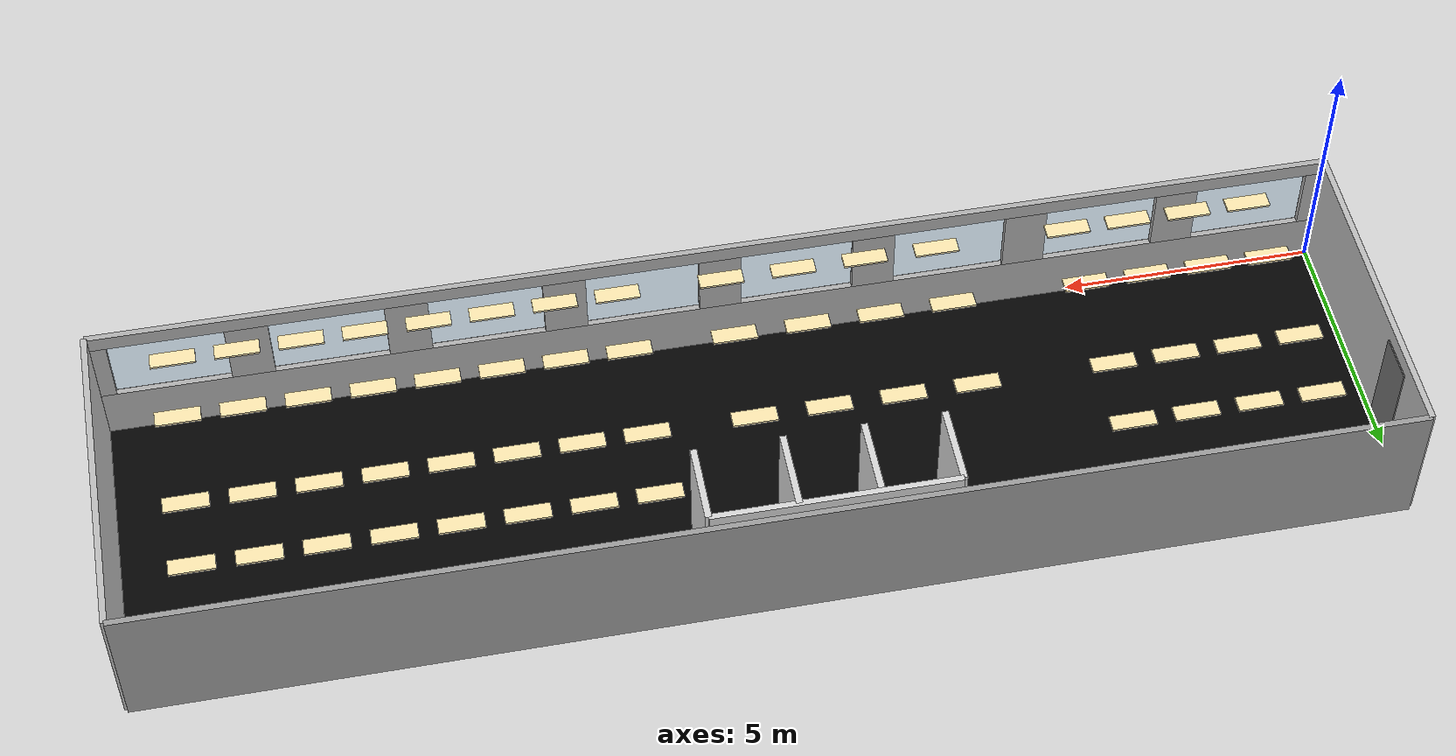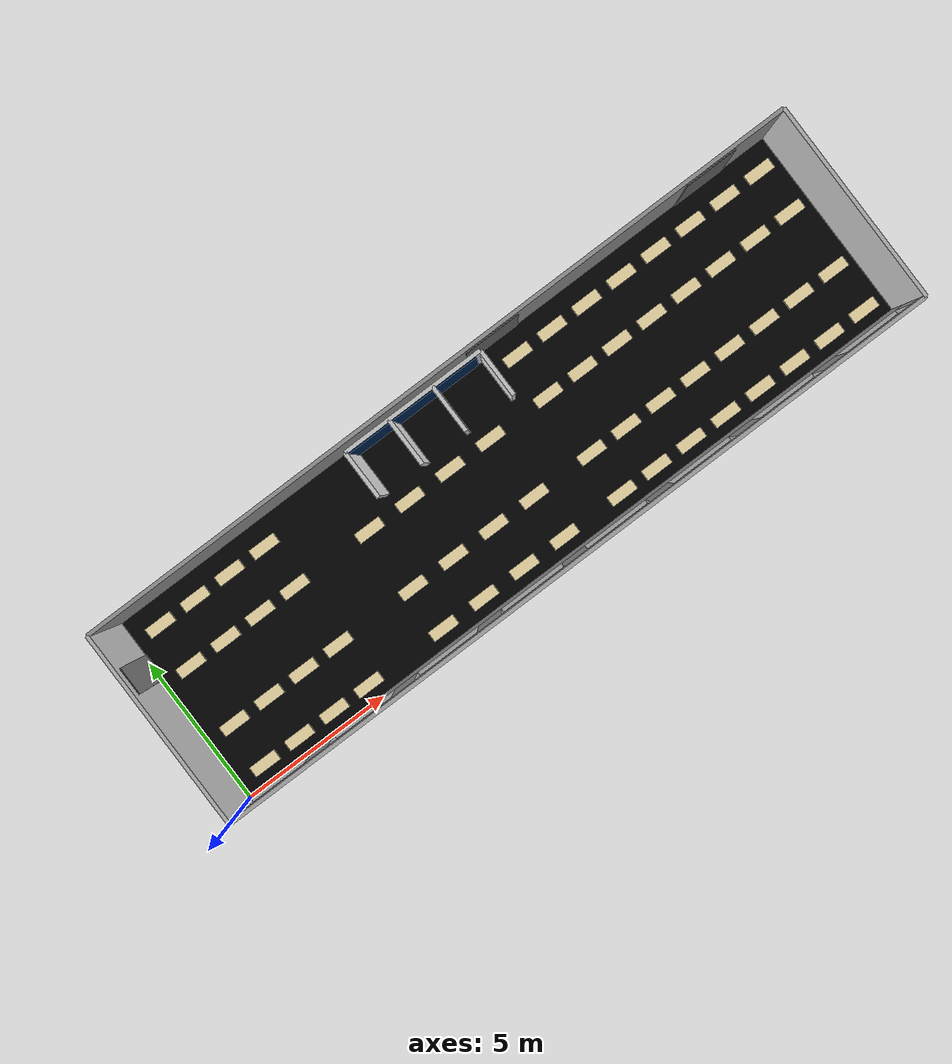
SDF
<?xml version="1.0" ?>
<sdf version="1.10">
  <world name="room_427">

    <plugin filename="gz-sim-physics-system" name="gz::sim::systems::Physics"/>
    <plugin filename="gz-sim-user-commands-system" name="gz::sim::systems::UserCommands"/>
    <plugin filename="gz-sim-scene-broadcaster-system" name="gz::sim::systems::SceneBroadcaster"/>

    <gravity>0 0 -9.8</gravity>

    <scene>
      <ambient>0.45 0.45 0.45 1</ambient>
      <background>0.75 0.78 0.82 1</background>
      <shadows>true</shadows>
      <grid>false</grid>
    </scene>

    <light name="main_light" type="directional">
      <pose>0 0 10 0 0 0</pose>
      <diffuse>0.8 0.8 0.8 1</diffuse>
      <specular>0.4 0.4 0.4 1</specular>
      <direction>-0.5 0.5 -1</direction>
    </light>

    <gui fullscreen="0">
      <camera name="user_camera">
        <pose>12 -10 8 0.7 0 1.15</pose>
      </camera>
    </gui>

    <!-- Floor: black, reflective -->
    <model name="room_427_floor">
      <static>true</static>
      <pose>12.1 3.27 0 0 0 0</pose>
      <link name="floor_link">
        <collision name="floor_collision">
          <geometry><box><size>24.2 6.54 0.03</size></box></geometry>
        </collision>
        <visual name="floor_visual">
          <geometry><box><size>24.2 6.54 0.03</size></box></geometry>
          <material>
            <ambient>0.01 0.01 0.01 1</ambient>
            <diffuse>0.02 0.02 0.02 1</diffuse>
            <specular>0.8 0.8 0.8 1</specular>
            <pbr>
              <metal>
                <metalness>0.0</metalness>
                <roughness>0.18</roughness>
              </metal>
            </pbr>
          </material>
        </visual>
      </link>
    </model>

    <model name="back_wall_D_C">
      <static>true</static>
      <pose>12.1 6.54 1.375 0 0 0</pose>
      <link name="link">
        <collision name="collision">
          <geometry><box><size>24.2 0.12 2.75</size></box></geometry>
        </collision>
        <visual name="visual">
          <geometry><box><size>24.2 0.12 2.75</size></box></geometry>
          <material>
            <ambient>0.62 0.62 0.62 1</ambient>
            <diffuse>0.62 0.62 0.62 1</diffuse>

          </material>

        </visual>
      </link>
    </model>

    <model name="wall_A_C_solid_no_door">
      <static>true</static>
      <pose>24.2 3.27 1.375 0 0 0</pose>
      <link name="link">
        <collision name="collision">
          <geometry><box><size>0.12 6.54 2.75</size></box></geometry>
        </collision>
        <visual name="visual">
          <geometry><box><size>0.12 6.54 2.75</size></box></geometry>
          <material>
            <ambient>0.75 0.75 0.75 1</ambient>
            <diffuse>0.75 0.75 0.75 1</diffuse>

          </material>

        </visual>
      </link>
    </model>
    <!-- B-D wall: solid wall; Door 3 is shown as a gray door panel near D -->
    <model name="B_D_wall_solid_with_door3_panel">
      <static>true</static>
      <pose>0 3.27 1.375 0 0 0</pose>
      <link name="wall_B_D_solid">
        <collision name="collision">
          <geometry><box><size>0.12 6.54 2.75</size></box></geometry>
        </collision>
        <visual name="visual">
          <geometry><box><size>0.12 6.54 2.75</size></box></geometry>
          <material>
            <ambient>0.75 0.75 0.75 1</ambient>
            <diffuse>0.75 0.75 0.75 1</diffuse>
          </material>
        </visual>
      </link>
      <link name="door_3_panel_near_D">
        <pose>0.065 1.5682 -0.16 0 0 0</pose>
        <visual name="visual">
          <geometry><box><size>0.04 0.9144 2.43</size></box></geometry>
          <material>
            <ambient>0.45 0.45 0.45 1</ambient>
            <diffuse>0.45 0.45 0.45 1</diffuse>
          </material>
        </visual>
      </link>
    </model>

    <model name="window_wall_lower_A_B">
      <static>true</static>
      <pose>12.1 0 0.545 0 0 0</pose>
      <link name="link">
        <collision name="collision">
          <geometry><box><size>24.2 0.12 1.09</size></box></geometry>
        </collision>
        <visual name="visual">
          <geometry><box><size>24.2 0.12 1.09</size></box></geometry>
          <material>
            <ambient>0.7 0.7 0.7 1</ambient>
            <diffuse>0.7 0.7 0.7 1</diffuse>

          </material>

        </visual>
      </link>
    </model>

    <model name="window_wall_top_A_B">
      <static>true</static>
      <pose>12.1 0 2.5925 0 0 0</pose>
      <link name="link">
        <collision name="collision">
          <geometry><box><size>24.2 0.12 0.305</size></box></geometry>
        </collision>
        <visual name="visual">
          <geometry><box><size>24.2 0.12 0.305</size></box></geometry>
          <material>
            <ambient>0.7 0.7 0.7 1</ambient>
            <diffuse>0.7 0.7 0.7 1</diffuse>

          </material>

        </visual>
      </link>
    </model>

    <model name="window_wall_vertical_pieces">
      <static>true</static>

      <link name="window_side_left">
        <pose>0.1725 0 1.765 0 0 0</pose>
        <collision name="collision">
          <geometry><box><size>0.345 0.12 1.35</size></box></geometry>
        </collision>
        <visual name="visual">
          <geometry><box><size>0.345 0.12 1.35</size></box></geometry>
          <material>
            <ambient>0.7 0.7 0.7 1</ambient>
            <diffuse>0.7 0.7 0.7 1</diffuse>

          </material>

        </visual>
      </link>

      <link name="window_gap_1">
        <pose>2.97 0 1.765 0 0 0</pose>
        <collision name="collision">
          <geometry><box><size>0.83 0.12 1.35</size></box></geometry>
        </collision>
        <visual name="visual">
          <geometry><box><size>0.83 0.12 1.35</size></box></geometry>
          <material>
            <ambient>0.7 0.7 0.7 1</ambient>
            <diffuse>0.7 0.7 0.7 1</diffuse>

          </material>

        </visual>
      </link>

      <link name="window_gap_2">
        <pose>6.01 0 1.765 0 0 0</pose>
        <collision name="collision">
          <geometry><box><size>0.83 0.12 1.35</size></box></geometry>
        </collision>
        <visual name="visual">
          <geometry><box><size>0.83 0.12 1.35</size></box></geometry>
          <material>
            <ambient>0.7 0.7 0.7 1</ambient>
            <diffuse>0.7 0.7 0.7 1</diffuse>

          </material>

        </visual>
      </link>

      <link name="window_gap_3">
        <pose>9.05 0 1.765 0 0 0</pose>
        <collision name="collision">
          <geometry><box><size>0.83 0.12 1.35</size></box></geometry>
        </collision>
        <visual name="visual">
          <geometry><box><size>0.83 0.12 1.35</size></box></geometry>
          <material>
            <ambient>0.7 0.7 0.7 1</ambient>
            <diffuse>0.7 0.7 0.7 1</diffuse>

          </material>

        </visual>
      </link>

      <link name="window_gap_4">
        <pose>12.09 0 1.765 0 0 0</pose>
        <collision name="collision">
          <geometry><box><size>0.83 0.12 1.35</size></box></geometry>
        </collision>
        <visual name="visual">
          <geometry><box><size>0.83 0.12 1.35</size></box></geometry>
          <material>
            <ambient>0.7 0.7 0.7 1</ambient>
            <diffuse>0.7 0.7 0.7 1</diffuse>

          </material>

        </visual>
      </link>

      <link name="window_gap_5">
        <pose>15.13 0 1.765 0 0 0</pose>
        <collision name="collision">
          <geometry><box><size>0.83 0.12 1.35</size></box></geometry>
        </collision>
        <visual name="visual">
          <geometry><box><size>0.83 0.12 1.35</size></box></geometry>
          <material>
            <ambient>0.7 0.7 0.7 1</ambient>
            <diffuse>0.7 0.7 0.7 1</diffuse>

          </material>

        </visual>
      </link>

      <link name="window_gap_6">
        <pose>18.17 0 1.765 0 0 0</pose>
        <collision name="collision">
          <geometry><box><size>0.83 0.12 1.35</size></box></geometry>
        </collision>
        <visual name="visual">
          <geometry><box><size>0.83 0.12 1.35</size></box></geometry>
          <material>
            <ambient>0.7 0.7 0.7 1</ambient>
            <diffuse>0.7 0.7 0.7 1</diffuse>

          </material>

        </visual>
      </link>

      <link name="window_gap_7">
        <pose>21.21 0 1.765 0 0 0</pose>
        <collision name="collision">
          <geometry><box><size>0.83 0.12 1.35</size></box></geometry>
        </collision>
        <visual name="visual">
          <geometry><box><size>0.83 0.12 1.35</size></box></geometry>
          <material>
            <ambient>0.7 0.7 0.7 1</ambient>
            <diffuse>0.7 0.7 0.7 1</diffuse>

          </material>

        </visual>
      </link>

      <link name="window_side_right">
        <pose>24.0175 0 1.765 0 0 0</pose>
        <collision name="collision">
          <geometry><box><size>0.365 0.12 1.35</size></box></geometry>
        </collision>
        <visual name="visual">
          <geometry><box><size>0.365 0.12 1.35</size></box></geometry>
          <material>
            <ambient>0.7 0.7 0.7 1</ambient>
            <diffuse>0.7 0.7 0.7 1</diffuse>

          </material>

        </visual>
      </link>
    </model>

    <model name="window_glass_panes">
      <static>true</static>

      <link name="window_1">
        <pose>1.45 -0.07 1.765 0 0 0</pose>
        <visual name="visual">
          <geometry><box><size>2.21 0.03 1.35</size></box></geometry>
          <material>
            <ambient>0.55 0.75 0.9 0.35</ambient>
            <diffuse>0.55 0.75 0.9 0.35</diffuse>
            <specular>0.8 0.8 0.8 1</specular>

          </material>
          <transparency>0.55</transparency>
        </visual>
      </link>

      <link name="window_2">
        <pose>4.49 -0.07 1.765 0 0 0</pose>
        <visual name="visual">
          <geometry><box><size>2.21 0.03 1.35</size></box></geometry>
          <material>
            <ambient>0.55 0.75 0.9 0.35</ambient>
            <diffuse>0.55 0.75 0.9 0.35</diffuse>
            <specular>0.8 0.8 0.8 1</specular>

          </material>
          <transparency>0.55</transparency>
        </visual>
      </link>

      <link name="window_3">
        <pose>7.53 -0.07 1.765 0 0 0</pose>
        <visual name="visual">
          <geometry><box><size>2.21 0.03 1.35</size></box></geometry>
          <material>
            <ambient>0.55 0.75 0.9 0.35</ambient>
            <diffuse>0.55 0.75 0.9 0.35</diffuse>
            <specular>0.8 0.8 0.8 1</specular>

          </material>
          <transparency>0.55</transparency>
        </visual>
      </link>

      <link name="window_4">
        <pose>10.57 -0.07 1.765 0 0 0</pose>
        <visual name="visual">
          <geometry><box><size>2.21 0.03 1.35</size></box></geometry>
          <material>
            <ambient>0.55 0.75 0.9 0.35</ambient>
            <diffuse>0.55 0.75 0.9 0.35</diffuse>
            <specular>0.8 0.8 0.8 1</specular>

          </material>
          <transparency>0.55</transparency>
        </visual>
      </link>

      <link name="window_5">
        <pose>13.61 -0.07 1.765 0 0 0</pose>
        <visual name="visual">
          <geometry><box><size>2.21 0.03 1.35</size></box></geometry>
          <material>
            <ambient>0.55 0.75 0.9 0.35</ambient>
            <diffuse>0.55 0.75 0.9 0.35</diffuse>
            <specular>0.8 0.8 0.8 1</specular>

          </material>
          <transparency>0.55</transparency>
        </visual>
      </link>

      <link name="window_6">
        <pose>16.65 -0.07 1.765 0 0 0</pose>
        <visual name="visual">
          <geometry><box><size>2.21 0.03 1.35</size></box></geometry>
          <material>
            <ambient>0.55 0.75 0.9 0.35</ambient>
            <diffuse>0.55 0.75 0.9 0.35</diffuse>
            <specular>0.8 0.8 0.8 1</specular>

          </material>
          <transparency>0.55</transparency>
        </visual>
      </link>

      <link name="window_7">
        <pose>19.69 -0.07 1.765 0 0 0</pose>
        <visual name="visual">
          <geometry><box><size>2.21 0.03 1.35</size></box></geometry>
          <material>
            <ambient>0.55 0.75 0.9 0.35</ambient>
            <diffuse>0.55 0.75 0.9 0.35</diffuse>
            <specular>0.8 0.8 0.8 1</specular>

          </material>
          <transparency>0.55</transparency>
        </visual>
      </link>

      <link name="window_8">
        <pose>22.73 -0.07 1.765 0 0 0</pose>
        <visual name="visual">
          <geometry><box><size>2.21 0.03 1.35</size></box></geometry>
          <material>
            <ambient>0.55 0.75 0.9 0.35</ambient>
            <diffuse>0.55 0.75 0.9 0.35</diffuse>
            <specular>0.8 0.8 0.8 1</specular>

          </material>
          <transparency>0.55</transparency>
        </visual>
      </link>
    </model>

    <model name="ceiling_lights_zone1">
      <static>true</static>

      <link name="ceiling_lights_zone1_r1_c1">
        <pose>1.8 0.75 2.70 0 0 0</pose>
        <visual name="visual">
          <geometry><box><size>0.85 0.32 0.04</size></box></geometry>
          <material>
            <ambient>1.0 0.92 0.7 1</ambient>
            <diffuse>1.0 0.92 0.7 1</diffuse>

            <emissive>1.0 0.92 0.7 1</emissive>

          </material>

        </visual>
      </link>

      <link name="ceiling_lights_zone1_r1_c2">
        <pose>1.8 2.15 2.70 0 0 0</pose>
        <visual name="visual">
          <geometry><box><size>0.85 0.32 0.04</size></box></geometry>
          <material>
            <ambient>1.0 0.92 0.7 1</ambient>
            <diffuse>1.0 0.92 0.7 1</diffuse>

            <emissive>1.0 0.92 0.7 1</emissive>

          </material>

        </visual>
      </link>

      <link name="ceiling_lights_zone1_r1_c3">
        <pose>1.8 4.15 2.70 0 0 0</pose>
        <visual name="visual">
          <geometry><box><size>0.85 0.32 0.04</size></box></geometry>
          <material>
            <ambient>1.0 0.92 0.7 1</ambient>
            <diffuse>1.0 0.92 0.7 1</diffuse>

            <emissive>1.0 0.92 0.7 1</emissive>

          </material>

        </visual>
      </link>

      <link name="ceiling_lights_zone1_r1_c4">
        <pose>1.8 5.55 2.70 0 0 0</pose>
        <visual name="visual">
          <geometry><box><size>0.85 0.32 0.04</size></box></geometry>
          <material>
            <ambient>1.0 0.92 0.7 1</ambient>
            <diffuse>1.0 0.92 0.7 1</diffuse>

            <emissive>1.0 0.92 0.7 1</emissive>

          </material>

        </visual>
      </link>

      <link name="ceiling_lights_zone1_r2_c1">
        <pose>3.0 0.75 2.70 0 0 0</pose>
        <visual name="visual">
          <geometry><box><size>0.85 0.32 0.04</size></box></geometry>
          <material>
            <ambient>1.0 0.92 0.7 1</ambient>
            <diffuse>1.0 0.92 0.7 1</diffuse>

            <emissive>1.0 0.92 0.7 1</emissive>

          </material>

        </visual>
      </link>

      <link name="ceiling_lights_zone1_r2_c2">
        <pose>3.0 2.15 2.70 0 0 0</pose>
        <visual name="visual">
          <geometry><box><size>0.85 0.32 0.04</size></box></geometry>
          <material>
            <ambient>1.0 0.92 0.7 1</ambient>
            <diffuse>1.0 0.92 0.7 1</diffuse>

            <emissive>1.0 0.92 0.7 1</emissive>

          </material>

        </visual>
      </link>

      <link name="ceiling_lights_zone1_r2_c3">
        <pose>3.0 4.15 2.70 0 0 0</pose>
        <visual name="visual">
          <geometry><box><size>0.85 0.32 0.04</size></box></geometry>
          <material>
            <ambient>1.0 0.92 0.7 1</ambient>
            <diffuse>1.0 0.92 0.7 1</diffuse>

            <emissive>1.0 0.92 0.7 1</emissive>

          </material>

        </visual>
      </link>

      <link name="ceiling_lights_zone1_r2_c4">
        <pose>3.0 5.55 2.70 0 0 0</pose>
        <visual name="visual">
          <geometry><box><size>0.85 0.32 0.04</size></box></geometry>
          <material>
            <ambient>1.0 0.92 0.7 1</ambient>
            <diffuse>1.0 0.92 0.7 1</diffuse>

            <emissive>1.0 0.92 0.7 1</emissive>

          </material>

        </visual>
      </link>

      <link name="ceiling_lights_zone1_r3_c1">
        <pose>4.2 0.75 2.70 0 0 0</pose>
        <visual name="visual">
          <geometry><box><size>0.85 0.32 0.04</size></box></geometry>
          <material>
            <ambient>1.0 0.92 0.7 1</ambient>
            <diffuse>1.0 0.92 0.7 1</diffuse>

            <emissive>1.0 0.92 0.7 1</emissive>

          </material>

        </visual>
      </link>

      <link name="ceiling_lights_zone1_r3_c2">
        <pose>4.2 2.15 2.70 0 0 0</pose>
        <visual name="visual">
          <geometry><box><size>0.85 0.32 0.04</size></box></geometry>
          <material>
            <ambient>1.0 0.92 0.7 1</ambient>
            <diffuse>1.0 0.92 0.7 1</diffuse>

            <emissive>1.0 0.92 0.7 1</emissive>

          </material>

        </visual>
      </link>

      <link name="ceiling_lights_zone1_r3_c3">
        <pose>4.2 4.15 2.70 0 0 0</pose>
        <visual name="visual">
          <geometry><box><size>0.85 0.32 0.04</size></box></geometry>
          <material>
            <ambient>1.0 0.92 0.7 1</ambient>
            <diffuse>1.0 0.92 0.7 1</diffuse>

            <emissive>1.0 0.92 0.7 1</emissive>

          </material>

        </visual>
      </link>

      <link name="ceiling_lights_zone1_r3_c4">
        <pose>4.2 5.55 2.70 0 0 0</pose>
        <visual name="visual">
          <geometry><box><size>0.85 0.32 0.04</size></box></geometry>
          <material>
            <ambient>1.0 0.92 0.7 1</ambient>
            <diffuse>1.0 0.92 0.7 1</diffuse>

            <emissive>1.0 0.92 0.7 1</emissive>

          </material>

        </visual>
      </link>

      <link name="ceiling_lights_zone1_r4_c1">
        <pose>5.4 0.75 2.70 0 0 0</pose>
        <visual name="visual">
          <geometry><box><size>0.85 0.32 0.04</size></box></geometry>
          <material>
            <ambient>1.0 0.92 0.7 1</ambient>
            <diffuse>1.0 0.92 0.7 1</diffuse>

            <emissive>1.0 0.92 0.7 1</emissive>

          </material>

        </visual>
      </link>

      <link name="ceiling_lights_zone1_r4_c2">
        <pose>5.4 2.15 2.70 0 0 0</pose>
        <visual name="visual">
          <geometry><box><size>0.85 0.32 0.04</size></box></geometry>
          <material>
            <ambient>1.0 0.92 0.7 1</ambient>
            <diffuse>1.0 0.92 0.7 1</diffuse>

            <emissive>1.0 0.92 0.7 1</emissive>

          </material>

        </visual>
      </link>

      <link name="ceiling_lights_zone1_r4_c3">
        <pose>5.4 4.15 2.70 0 0 0</pose>
        <visual name="visual">
          <geometry><box><size>0.85 0.32 0.04</size></box></geometry>
          <material>
            <ambient>1.0 0.92 0.7 1</ambient>
            <diffuse>1.0 0.92 0.7 1</diffuse>

            <emissive>1.0 0.92 0.7 1</emissive>

          </material>

        </visual>
      </link>

      <link name="ceiling_lights_zone1_r4_c4">
        <pose>5.4 5.55 2.70 0 0 0</pose>
        <visual name="visual">
          <geometry><box><size>0.85 0.32 0.04</size></box></geometry>
          <material>
            <ambient>1.0 0.92 0.7 1</ambient>
            <diffuse>1.0 0.92 0.7 1</diffuse>

            <emissive>1.0 0.92 0.7 1</emissive>

          </material>

        </visual>
      </link>
    </model>

    <model name="ceiling_lights_zone2">
      <static>true</static>

      <link name="ceiling_lights_zone2_r1_c1">
        <pose>8.0 0.75 2.70 0 0 0</pose>
        <visual name="visual">
          <geometry><box><size>0.85 0.32 0.04</size></box></geometry>
          <material>
            <ambient>1.0 0.92 0.7 1</ambient>
            <diffuse>1.0 0.92 0.7 1</diffuse>

            <emissive>1.0 0.92 0.7 1</emissive>

          </material>

        </visual>
      </link>

      <link name="ceiling_lights_zone2_r1_c2">
        <pose>8.0 2.15 2.70 0 0 0</pose>
        <visual name="visual">
          <geometry><box><size>0.85 0.32 0.04</size></box></geometry>
          <material>
            <ambient>1.0 0.92 0.7 1</ambient>
            <diffuse>1.0 0.92 0.7 1</diffuse>

            <emissive>1.0 0.92 0.7 1</emissive>

          </material>

        </visual>
      </link>

      <link name="ceiling_lights_zone2_r1_c3">
        <pose>8.0 4.15 2.70 0 0 0</pose>
        <visual name="visual">
          <geometry><box><size>0.85 0.32 0.04</size></box></geometry>
          <material>
            <ambient>1.0 0.92 0.7 1</ambient>
            <diffuse>1.0 0.92 0.7 1</diffuse>

            <emissive>1.0 0.92 0.7 1</emissive>

          </material>

        </visual>
      </link>

      <link name="ceiling_lights_zone2_r2_c1">
        <pose>9.4 0.75 2.70 0 0 0</pose>
        <visual name="visual">
          <geometry><box><size>0.85 0.32 0.04</size></box></geometry>
          <material>
            <ambient>1.0 0.92 0.7 1</ambient>
            <diffuse>1.0 0.92 0.7 1</diffuse>

            <emissive>1.0 0.92 0.7 1</emissive>

          </material>

        </visual>
      </link>

      <link name="ceiling_lights_zone2_r2_c2">
        <pose>9.4 2.15 2.70 0 0 0</pose>
        <visual name="visual">
          <geometry><box><size>0.85 0.32 0.04</size></box></geometry>
          <material>
            <ambient>1.0 0.92 0.7 1</ambient>
            <diffuse>1.0 0.92 0.7 1</diffuse>

            <emissive>1.0 0.92 0.7 1</emissive>

          </material>

        </visual>
      </link>

      <link name="ceiling_lights_zone2_r2_c3">
        <pose>9.4 4.15 2.70 0 0 0</pose>
        <visual name="visual">
          <geometry><box><size>0.85 0.32 0.04</size></box></geometry>
          <material>
            <ambient>1.0 0.92 0.7 1</ambient>
            <diffuse>1.0 0.92 0.7 1</diffuse>

            <emissive>1.0 0.92 0.7 1</emissive>

          </material>

        </visual>
      </link>

      <link name="ceiling_lights_zone2_r3_c1">
        <pose>10.8 0.75 2.70 0 0 0</pose>
        <visual name="visual">
          <geometry><box><size>0.85 0.32 0.04</size></box></geometry>
          <material>
            <ambient>1.0 0.92 0.7 1</ambient>
            <diffuse>1.0 0.92 0.7 1</diffuse>

            <emissive>1.0 0.92 0.7 1</emissive>

          </material>

        </visual>
      </link>

      <link name="ceiling_lights_zone2_r3_c2">
        <pose>10.8 2.15 2.70 0 0 0</pose>
        <visual name="visual">
          <geometry><box><size>0.85 0.32 0.04</size></box></geometry>
          <material>
            <ambient>1.0 0.92 0.7 1</ambient>
            <diffuse>1.0 0.92 0.7 1</diffuse>

            <emissive>1.0 0.92 0.7 1</emissive>

          </material>

        </visual>
      </link>

      <link name="ceiling_lights_zone2_r3_c3">
        <pose>10.8 4.15 2.70 0 0 0</pose>
        <visual name="visual">
          <geometry><box><size>0.85 0.32 0.04</size></box></geometry>
          <material>
            <ambient>1.0 0.92 0.7 1</ambient>
            <diffuse>1.0 0.92 0.7 1</diffuse>

            <emissive>1.0 0.92 0.7 1</emissive>

          </material>

        </visual>
      </link>

      <link name="ceiling_lights_zone2_r4_c1">
        <pose>12.2 0.75 2.70 0 0 0</pose>
        <visual name="visual">
          <geometry><box><size>0.85 0.32 0.04</size></box></geometry>
          <material>
            <ambient>1.0 0.92 0.7 1</ambient>
            <diffuse>1.0 0.92 0.7 1</diffuse>

            <emissive>1.0 0.92 0.7 1</emissive>

          </material>

        </visual>
      </link>

      <link name="ceiling_lights_zone2_r4_c2">
        <pose>12.2 2.15 2.70 0 0 0</pose>
        <visual name="visual">
          <geometry><box><size>0.85 0.32 0.04</size></box></geometry>
          <material>
            <ambient>1.0 0.92 0.7 1</ambient>
            <diffuse>1.0 0.92 0.7 1</diffuse>

            <emissive>1.0 0.92 0.7 1</emissive>

          </material>

        </visual>
      </link>

      <link name="ceiling_lights_zone2_r4_c3">
        <pose>12.2 4.15 2.70 0 0 0</pose>
        <visual name="visual">
          <geometry><box><size>0.85 0.32 0.04</size></box></geometry>
          <material>
            <ambient>1.0 0.92 0.7 1</ambient>
            <diffuse>1.0 0.92 0.7 1</diffuse>

            <emissive>1.0 0.92 0.7 1</emissive>

          </material>

        </visual>
      </link>
    </model>

    <model name="ceiling_lights_zone3">
      <static>true</static>

      <link name="ceiling_lights_zone3_r1_c1">
        <pose>14.2 0.75 2.70 0 0 0</pose>
        <visual name="visual">
          <geometry><box><size>0.85 0.32 0.04</size></box></geometry>
          <material>
            <ambient>1.0 0.92 0.7 1</ambient>
            <diffuse>1.0 0.92 0.7 1</diffuse>

            <emissive>1.0 0.92 0.7 1</emissive>

          </material>

        </visual>
      </link>

      <link name="ceiling_lights_zone3_r1_c2">
        <pose>14.2 2.15 2.70 0 0 0</pose>
        <visual name="visual">
          <geometry><box><size>0.85 0.32 0.04</size></box></geometry>
          <material>
            <ambient>1.0 0.92 0.7 1</ambient>
            <diffuse>1.0 0.92 0.7 1</diffuse>

            <emissive>1.0 0.92 0.7 1</emissive>

          </material>

        </visual>
      </link>

      <link name="ceiling_lights_zone3_r1_c3">
        <pose>14.2 4.15 2.70 0 0 0</pose>
        <visual name="visual">
          <geometry><box><size>0.85 0.32 0.04</size></box></geometry>
          <material>
            <ambient>1.0 0.92 0.7 1</ambient>
            <diffuse>1.0 0.92 0.7 1</diffuse>

            <emissive>1.0 0.92 0.7 1</emissive>

          </material>

        </visual>
      </link>

      <link name="ceiling_lights_zone3_r1_c4">
        <pose>14.2 5.55 2.70 0 0 0</pose>
        <visual name="visual">
          <geometry><box><size>0.85 0.32 0.04</size></box></geometry>
          <material>
            <ambient>1.0 0.92 0.7 1</ambient>
            <diffuse>1.0 0.92 0.7 1</diffuse>

            <emissive>1.0 0.92 0.7 1</emissive>

          </material>

        </visual>
      </link>

      <link name="ceiling_lights_zone3_r2_c1">
        <pose>15.4 0.75 2.70 0 0 0</pose>
        <visual name="visual">
          <geometry><box><size>0.85 0.32 0.04</size></box></geometry>
          <material>
            <ambient>1.0 0.92 0.7 1</ambient>
            <diffuse>1.0 0.92 0.7 1</diffuse>

            <emissive>1.0 0.92 0.7 1</emissive>

          </material>

        </visual>
      </link>

      <link name="ceiling_lights_zone3_r2_c2">
        <pose>15.4 2.15 2.70 0 0 0</pose>
        <visual name="visual">
          <geometry><box><size>0.85 0.32 0.04</size></box></geometry>
          <material>
            <ambient>1.0 0.92 0.7 1</ambient>
            <diffuse>1.0 0.92 0.7 1</diffuse>

            <emissive>1.0 0.92 0.7 1</emissive>

          </material>

        </visual>
      </link>

      <link name="ceiling_lights_zone3_r2_c3">
        <pose>15.4 4.15 2.70 0 0 0</pose>
        <visual name="visual">
          <geometry><box><size>0.85 0.32 0.04</size></box></geometry>
          <material>
            <ambient>1.0 0.92 0.7 1</ambient>
            <diffuse>1.0 0.92 0.7 1</diffuse>

            <emissive>1.0 0.92 0.7 1</emissive>

          </material>

        </visual>
      </link>

      <link name="ceiling_lights_zone3_r2_c4">
        <pose>15.4 5.55 2.70 0 0 0</pose>
        <visual name="visual">
          <geometry><box><size>0.85 0.32 0.04</size></box></geometry>
          <material>
            <ambient>1.0 0.92 0.7 1</ambient>
            <diffuse>1.0 0.92 0.7 1</diffuse>

            <emissive>1.0 0.92 0.7 1</emissive>

          </material>

        </visual>
      </link>

      <link name="ceiling_lights_zone3_r3_c1">
        <pose>16.6 0.75 2.70 0 0 0</pose>
        <visual name="visual">
          <geometry><box><size>0.85 0.32 0.04</size></box></geometry>
          <material>
            <ambient>1.0 0.92 0.7 1</ambient>
            <diffuse>1.0 0.92 0.7 1</diffuse>

            <emissive>1.0 0.92 0.7 1</emissive>

          </material>

        </visual>
      </link>

      <link name="ceiling_lights_zone3_r3_c2">
        <pose>16.6 2.15 2.70 0 0 0</pose>
        <visual name="visual">
          <geometry><box><size>0.85 0.32 0.04</size></box></geometry>
          <material>
            <ambient>1.0 0.92 0.7 1</ambient>
            <diffuse>1.0 0.92 0.7 1</diffuse>

            <emissive>1.0 0.92 0.7 1</emissive>

          </material>

        </visual>
      </link>

      <link name="ceiling_lights_zone3_r3_c3">
        <pose>16.6 4.15 2.70 0 0 0</pose>
        <visual name="visual">
          <geometry><box><size>0.85 0.32 0.04</size></box></geometry>
          <material>
            <ambient>1.0 0.92 0.7 1</ambient>
            <diffuse>1.0 0.92 0.7 1</diffuse>

            <emissive>1.0 0.92 0.7 1</emissive>

          </material>

        </visual>
      </link>

      <link name="ceiling_lights_zone3_r3_c4">
        <pose>16.6 5.55 2.70 0 0 0</pose>
        <visual name="visual">
          <geometry><box><size>0.85 0.32 0.04</size></box></geometry>
          <material>
            <ambient>1.0 0.92 0.7 1</ambient>
            <diffuse>1.0 0.92 0.7 1</diffuse>

            <emissive>1.0 0.92 0.7 1</emissive>

          </material>

        </visual>
      </link>

      <link name="ceiling_lights_zone3_r4_c1">
        <pose>17.8 0.75 2.70 0 0 0</pose>
        <visual name="visual">
          <geometry><box><size>0.85 0.32 0.04</size></box></geometry>
          <material>
            <ambient>1.0 0.92 0.7 1</ambient>
            <diffuse>1.0 0.92 0.7 1</diffuse>

            <emissive>1.0 0.92 0.7 1</emissive>

          </material>

        </visual>
      </link>

      <link name="ceiling_lights_zone3_r4_c2">
        <pose>17.8 2.15 2.70 0 0 0</pose>
        <visual name="visual">
          <geometry><box><size>0.85 0.32 0.04</size></box></geometry>
          <material>
            <ambient>1.0 0.92 0.7 1</ambient>
            <diffuse>1.0 0.92 0.7 1</diffuse>

            <emissive>1.0 0.92 0.7 1</emissive>

          </material>

        </visual>
      </link>

      <link name="ceiling_lights_zone3_r4_c3">
        <pose>17.8 4.15 2.70 0 0 0</pose>
        <visual name="visual">
          <geometry><box><size>0.85 0.32 0.04</size></box></geometry>
          <material>
            <ambient>1.0 0.92 0.7 1</ambient>
            <diffuse>1.0 0.92 0.7 1</diffuse>

            <emissive>1.0 0.92 0.7 1</emissive>

          </material>

        </visual>
      </link>

      <link name="ceiling_lights_zone3_r4_c4">
        <pose>17.8 5.55 2.70 0 0 0</pose>
        <visual name="visual">
          <geometry><box><size>0.85 0.32 0.04</size></box></geometry>
          <material>
            <ambient>1.0 0.92 0.7 1</ambient>
            <diffuse>1.0 0.92 0.7 1</diffuse>

            <emissive>1.0 0.92 0.7 1</emissive>

          </material>

        </visual>
      </link>

      <link name="ceiling_lights_zone3_r5_c1">
        <pose>19.0 0.75 2.70 0 0 0</pose>
        <visual name="visual">
          <geometry><box><size>0.85 0.32 0.04</size></box></geometry>
          <material>
            <ambient>1.0 0.92 0.7 1</ambient>
            <diffuse>1.0 0.92 0.7 1</diffuse>

            <emissive>1.0 0.92 0.7 1</emissive>

          </material>

        </visual>
      </link>

      <link name="ceiling_lights_zone3_r5_c2">
        <pose>19.0 2.15 2.70 0 0 0</pose>
        <visual name="visual">
          <geometry><box><size>0.85 0.32 0.04</size></box></geometry>
          <material>
            <ambient>1.0 0.92 0.7 1</ambient>
            <diffuse>1.0 0.92 0.7 1</diffuse>

            <emissive>1.0 0.92 0.7 1</emissive>

          </material>

        </visual>
      </link>

      <link name="ceiling_lights_zone3_r5_c3">
        <pose>19.0 4.15 2.70 0 0 0</pose>
        <visual name="visual">
          <geometry><box><size>0.85 0.32 0.04</size></box></geometry>
          <material>
            <ambient>1.0 0.92 0.7 1</ambient>
            <diffuse>1.0 0.92 0.7 1</diffuse>

            <emissive>1.0 0.92 0.7 1</emissive>

          </material>

        </visual>
      </link>

      <link name="ceiling_lights_zone3_r5_c4">
        <pose>19.0 5.55 2.70 0 0 0</pose>
        <visual name="visual">
          <geometry><box><size>0.85 0.32 0.04</size></box></geometry>
          <material>
            <ambient>1.0 0.92 0.7 1</ambient>
            <diffuse>1.0 0.92 0.7 1</diffuse>

            <emissive>1.0 0.92 0.7 1</emissive>

          </material>

        </visual>
      </link>

      <link name="ceiling_lights_zone3_r6_c1">
        <pose>20.2 0.75 2.70 0 0 0</pose>
        <visual name="visual">
          <geometry><box><size>0.85 0.32 0.04</size></box></geometry>
          <material>
            <ambient>1.0 0.92 0.7 1</ambient>
            <diffuse>1.0 0.92 0.7 1</diffuse>

            <emissive>1.0 0.92 0.7 1</emissive>

          </material>

        </visual>
      </link>

      <link name="ceiling_lights_zone3_r6_c2">
        <pose>20.2 2.15 2.70 0 0 0</pose>
        <visual name="visual">
          <geometry><box><size>0.85 0.32 0.04</size></box></geometry>
          <material>
            <ambient>1.0 0.92 0.7 1</ambient>
            <diffuse>1.0 0.92 0.7 1</diffuse>

            <emissive>1.0 0.92 0.7 1</emissive>

          </material>

        </visual>
      </link>

      <link name="ceiling_lights_zone3_r6_c3">
        <pose>20.2 4.15 2.70 0 0 0</pose>
        <visual name="visual">
          <geometry><box><size>0.85 0.32 0.04</size></box></geometry>
          <material>
            <ambient>1.0 0.92 0.7 1</ambient>
            <diffuse>1.0 0.92 0.7 1</diffuse>

            <emissive>1.0 0.92 0.7 1</emissive>

          </material>

        </visual>
      </link>

      <link name="ceiling_lights_zone3_r6_c4">
        <pose>20.2 5.55 2.70 0 0 0</pose>
        <visual name="visual">
          <geometry><box><size>0.85 0.32 0.04</size></box></geometry>
          <material>
            <ambient>1.0 0.92 0.7 1</ambient>
            <diffuse>1.0 0.92 0.7 1</diffuse>

            <emissive>1.0 0.92 0.7 1</emissive>

          </material>

        </visual>
      </link>

      <link name="ceiling_lights_zone3_r7_c1">
        <pose>21.4 0.75 2.70 0 0 0</pose>
        <visual name="visual">
          <geometry><box><size>0.85 0.32 0.04</size></box></geometry>
          <material>
            <ambient>1.0 0.92 0.7 1</ambient>
            <diffuse>1.0 0.92 0.7 1</diffuse>

            <emissive>1.0 0.92 0.7 1</emissive>

          </material>

        </visual>
      </link>

      <link name="ceiling_lights_zone3_r7_c2">
        <pose>21.4 2.15 2.70 0 0 0</pose>
        <visual name="visual">
          <geometry><box><size>0.85 0.32 0.04</size></box></geometry>
          <material>
            <ambient>1.0 0.92 0.7 1</ambient>
            <diffuse>1.0 0.92 0.7 1</diffuse>

            <emissive>1.0 0.92 0.7 1</emissive>

          </material>

        </visual>
      </link>

      <link name="ceiling_lights_zone3_r7_c3">
        <pose>21.4 4.15 2.70 0 0 0</pose>
        <visual name="visual">
          <geometry><box><size>0.85 0.32 0.04</size></box></geometry>
          <material>
            <ambient>1.0 0.92 0.7 1</ambient>
            <diffuse>1.0 0.92 0.7 1</diffuse>

            <emissive>1.0 0.92 0.7 1</emissive>

          </material>

        </visual>
      </link>

      <link name="ceiling_lights_zone3_r7_c4">
        <pose>21.4 5.55 2.70 0 0 0</pose>
        <visual name="visual">
          <geometry><box><size>0.85 0.32 0.04</size></box></geometry>
          <material>
            <ambient>1.0 0.92 0.7 1</ambient>
            <diffuse>1.0 0.92 0.7 1</diffuse>

            <emissive>1.0 0.92 0.7 1</emissive>

          </material>

        </visual>
      </link>

      <link name="ceiling_lights_zone3_r8_c1">
        <pose>22.6 0.75 2.70 0 0 0</pose>
        <visual name="visual">
          <geometry><box><size>0.85 0.32 0.04</size></box></geometry>
          <material>
            <ambient>1.0 0.92 0.7 1</ambient>
            <diffuse>1.0 0.92 0.7 1</diffuse>

            <emissive>1.0 0.92 0.7 1</emissive>

          </material>

        </visual>
      </link>

      <link name="ceiling_lights_zone3_r8_c2">
        <pose>22.6 2.15 2.70 0 0 0</pose>
        <visual name="visual">
          <geometry><box><size>0.85 0.32 0.04</size></box></geometry>
          <material>
            <ambient>1.0 0.92 0.7 1</ambient>
            <diffuse>1.0 0.92 0.7 1</diffuse>

            <emissive>1.0 0.92 0.7 1</emissive>

          </material>

        </visual>
      </link>

      <link name="ceiling_lights_zone3_r8_c3">
        <pose>22.6 4.15 2.70 0 0 0</pose>
        <visual name="visual">
          <geometry><box><size>0.85 0.32 0.04</size></box></geometry>
          <material>
            <ambient>1.0 0.92 0.7 1</ambient>
            <diffuse>1.0 0.92 0.7 1</diffuse>

            <emissive>1.0 0.92 0.7 1</emissive>

          </material>

        </visual>
      </link>

      <link name="ceiling_lights_zone3_r8_c4">
        <pose>22.6 5.55 2.70 0 0 0</pose>
        <visual name="visual">
          <geometry><box><size>0.85 0.32 0.04</size></box></geometry>
          <material>
            <ambient>1.0 0.92 0.7 1</ambient>
            <diffuse>1.0 0.92 0.7 1</diffuse>

            <emissive>1.0 0.92 0.7 1</emissive>

          </material>

        </visual>
      </link>
    </model>

    <model name="doors_and_connected_boxes_on_D_C_wall">
      <static>true</static>

      <link name="door_1_panel_D_C_wall">
        <pose>21.7 6.47 1.215 0 0 0</pose>
        <visual name="visual">
          <geometry><box><size>1.72 0.04 2.43</size></box></geometry>
          <material>
            <ambient>0.45 0.45 0.45 1</ambient>
            <diffuse>0.45 0.45 0.45 1</diffuse>

          </material>

        </visual>
      </link>

      <link name="door_2_panel_D_C_wall">
        <pose>14.0 6.47 1.215 0 0 0</pose>
        <visual name="visual">
          <geometry><box><size>1.83 0.04 2.43</size></box></geometry>
          <material>
            <ambient>0.45 0.45 0.45 1</ambient>
            <diffuse>0.45 0.45 0.45 1</diffuse>

          </material>

        </visual>
      </link>

      <link name="boxes_back_wall">
        <pose>11.1 6.27 1.375 0 0 0</pose>
        <collision name="collision">
          <geometry><box><size>4.699 0.12 2.75</size></box></geometry>
        </collision>
        <visual name="visual">
          <geometry><box><size>4.699 0.12 2.75</size></box></geometry>
          <material>
            <ambient>0.85 0.85 0.85 1</ambient>
            <diffuse>0.85 0.85 0.85 1</diffuse>

          </material>

        </visual>
      </link>

      <link name="boxes_left_side">
        <pose>8.75 5.50 1.375 0 0 0</pose>
        <collision name="collision">
          <geometry><box><size>0.127 1.549 2.75</size></box></geometry>
        </collision>
        <visual name="visual">
          <geometry><box><size>0.127 1.549 2.75</size></box></geometry>
          <material>
            <ambient>0.85 0.85 0.85 1</ambient>
            <diffuse>0.85 0.85 0.85 1</diffuse>

          </material>

        </visual>
      </link>

      <link name="boxes_divider_1">
        <pose>10.27 5.50 1.375 0 0 0</pose>
        <collision name="collision">
          <geometry><box><size>0.127 1.549 2.75</size></box></geometry>
        </collision>
        <visual name="visual">
          <geometry><box><size>0.127 1.549 2.75</size></box></geometry>
          <material>
            <ambient>0.85 0.85 0.85 1</ambient>
            <diffuse>0.85 0.85 0.85 1</diffuse>

          </material>

        </visual>
      </link>

      <link name="boxes_divider_2">
        <pose>11.79 5.50 1.375 0 0 0</pose>
        <collision name="collision">
          <geometry><box><size>0.127 1.549 2.75</size></box></geometry>
        </collision>
        <visual name="visual">
          <geometry><box><size>0.127 1.549 2.75</size></box></geometry>
          <material>
            <ambient>0.85 0.85 0.85 1</ambient>
            <diffuse>0.85 0.85 0.85 1</diffuse>

          </material>

        </visual>
      </link>

      <link name="boxes_right_side">
        <pose>13.45 5.50 1.375 0 0 0</pose>
        <collision name="collision">
          <geometry><box><size>0.127 1.549 2.75</size></box></geometry>
        </collision>
        <visual name="visual">
          <geometry><box><size>0.127 1.549 2.75</size></box></geometry>
          <material>
            <ambient>0.85 0.85 0.85 1</ambient>
            <diffuse>0.85 0.85 0.85 1</diffuse>

          </material>

        </visual>
      </link>

      <link name="box_1_blue_panel">
        <pose>9.51 6.20 1.35 0 0 0</pose>
        <visual name="visual">
          <geometry><box><size>1.397 0.03 2.50</size></box></geometry>
          <material>
            <ambient>0.0 0.16 0.35 1</ambient>
            <diffuse>0.0 0.16 0.35 1</diffuse>

          </material>

        </visual>
      </link>

      <link name="box_2_blue_panel">
        <pose>11.03 6.20 1.35 0 0 0</pose>
        <visual name="visual">
          <geometry><box><size>1.397 0.03 2.50</size></box></geometry>
          <material>
            <ambient>0.0 0.16 0.35 1</ambient>
            <diffuse>0.0 0.16 0.35 1</diffuse>

          </material>

        </visual>
      </link>

      <link name="box_3_blue_panel">
        <pose>12.55 6.20 1.35 0 0 0</pose>
        <visual name="visual">
          <geometry><box><size>1.397 0.03 2.50</size></box></geometry>
          <material>
            <ambient>0.0 0.16 0.35 1</ambient>
            <diffuse>0.0 0.16 0.35 1</diffuse>

          </material>

        </visual>
      </link>
    </model>

  </world>
</sdf>
